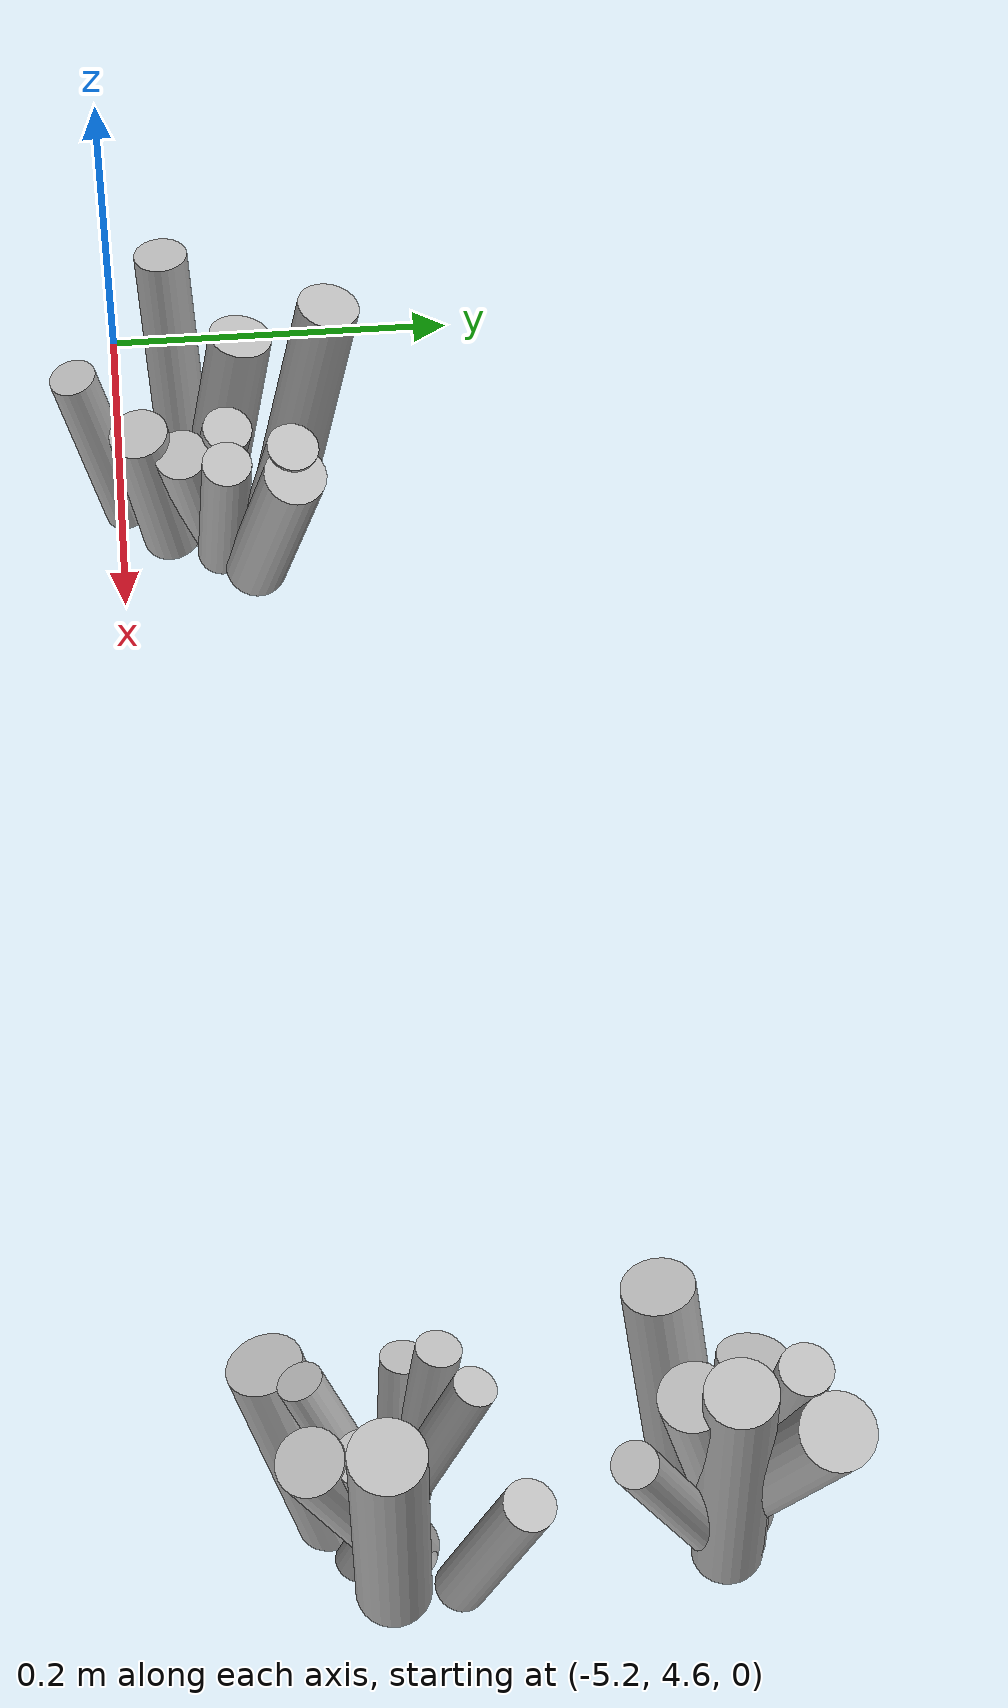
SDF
<sdf version="1.6">
 <world name="default">
  <model name="tussocks">
   <static>true</static>
   <link name="tuft69_0">
    <pose>-5.1239 4.6369 0.0465 0 0.2997 3.3750</pose>
    <visual name="tuft69_0_v">
     <geometry><cylinder><radius>0.0135</radius><length>0.1012</length></cylinder></geometry>
     <material>
      <script>
       <uri>model://bushfire/materials/scripts</uri>
       <uri>model://bushfire/materials/textures</uri>
       <name>Bushfire/Foliage2</name>
      </script>
     </material>
    </visual>
   </link>
   <link name="tuft69_1">
    <pose>-5.0542 4.6563 0.0493 0 0.2828 0.5223</pose>
    <visual name="tuft69_1_v">
     <geometry><cylinder><radius>0.0141</radius><length>0.1071</length></cylinder></geometry>
     <material>
      <script>
       <uri>model://bushfire/materials/scripts</uri>
       <uri>model://bushfire/materials/textures</uri>
       <name>Bushfire/Tussock</name>
      </script>
     </material>
    </visual>
   </link>
   <link name="tuft69_2">
    <pose>-5.1204 4.6355 0.0713 0 0.1743 3.4103</pose>
    <visual name="tuft69_2_v">
     <geometry><cylinder><radius>0.0152</radius><length>0.1549</length></cylinder></geometry>
     <material>
      <script>
       <uri>model://bushfire/materials/scripts</uri>
       <uri>model://bushfire/materials/textures</uri>
       <name>Bushfire/Foliage2</name>
      </script>
     </material>
    </visual>
   </link>
   <link name="tuft69_3">
    <pose>-5.0795 4.7090 0.0734 0 0.2038 1.8526</pose>
    <visual name="tuft69_3_v">
     <geometry><cylinder><radius>0.0177</radius><length>0.1596</length></cylinder></geometry>
     <material>
      <script>
       <uri>model://bushfire/materials/scripts</uri>
       <uri>model://bushfire/materials/textures</uri>
       <name>Bushfire/Foliage2</name>
      </script>
     </material>
    </visual>
   </link>
   <link name="tuft69_4">
    <pose>-5.0692 4.6618 0.0669 0 0.2027 2.1228</pose>
    <visual name="tuft69_4_v">
     <geometry><cylinder><radius>0.0178</radius><length>0.1455</length></cylinder></geometry>
     <material>
      <script>
       <uri>model://bushfire/materials/scripts</uri>
       <uri>model://bushfire/materials/textures</uri>
       <name>Bushfire/Foliage2</name>
      </script>
     </material>
    </visual>
   </link>
   <link name="tuft69_5">
    <pose>-5.0482 4.6212 0.0470 0 0.1720 5.1630</pose>
    <visual name="tuft69_5_v">
     <geometry><cylinder><radius>0.0169</radius><length>0.1022</length></cylinder></geometry>
     <material>
      <script>
       <uri>model://bushfire/materials/scripts</uri>
       <uri>model://bushfire/materials/textures</uri>
       <name>Bushfire/Foliage2</name>
      </script>
     </material>
    </visual>
   </link>
   <link name="tuft69_6">
    <pose>-5.0038 4.6877 0.0613 0 0.3409 0.5524</pose>
    <visual name="tuft69_6_v">
     <geometry><cylinder><radius>0.0178</radius><length>0.1333</length></cylinder></geometry>
     <material>
      <script>
       <uri>model://bushfire/materials/scripts</uri>
       <uri>model://bushfire/materials/textures</uri>
       <name>Bushfire/Tussock</name>
      </script>
     </material>
    </visual>
   </link>
   <link name="tuft69_7">
    <pose>-5.0255 4.6597 0.0496 0 0.2161 0.2189</pose>
    <visual name="tuft69_7_v">
     <geometry><cylinder><radius>0.0141</radius><length>0.1078</length></cylinder></geometry>
     <material>
      <script>
       <uri>model://bushfire/materials/scripts</uri>
       <uri>model://bushfire/materials/textures</uri>
       <name>Bushfire/Tussock</name>
      </script>
     </material>
    </visual>
   </link>
   <link name="tuft69_8">
    <pose>-5.0452 4.6430 0.0448 0 0.2983 5.8397</pose>
    <visual name="tuft69_8_v">
     <geometry><cylinder><radius>0.0154</radius><length>0.0975</length></cylinder></geometry>
     <material>
      <script>
       <uri>model://bushfire/materials/scripts</uri>
       <uri>model://bushfire/materials/textures</uri>
       <name>Bushfire/Foliage2</name>
      </script>
     </material>
    </visual>
   </link>
   <link name="tuft69_9">
    <pose>-5.0157 4.6874 0.0635 0 0.2810 0.6536</pose>
    <visual name="tuft69_9_v">
     <geometry><cylinder><radius>0.0147</radius><length>0.1381</length></cylinder></geometry>
     <material>
      <script>
       <uri>model://bushfire/materials/scripts</uri>
       <uri>model://bushfire/materials/textures</uri>
       <name>Bushfire/Tussock</name>
      </script>
     </material>
    </visual>
   </link>
   <link name="tuft69_10">
    <pose>-5.0747 4.5912 0.0539 0 0.2304 4.5166</pose>
    <visual name="tuft69_10_v">
     <geometry><cylinder><radius>0.0135</radius><length>0.1171</length></cylinder></geometry>
     <material>
      <script>
       <uri>model://bushfire/materials/scripts</uri>
       <uri>model://bushfire/materials/textures</uri>
       <name>Bushfire/Tussock</name>
      </script>
     </material>
    </visual>
   </link>
   <link name="tuft107_1">
    <pose>-4.4397 4.8527 0.0626 0 0.2342 3.6942</pose>
    <visual name="tuft107_1_v">
     <geometry><cylinder><radius>0.0187</radius><length>0.1361</length></cylinder></geometry>
     <material>
      <script>
       <uri>model://bushfire/materials/scripts</uri>
       <uri>model://bushfire/materials/textures</uri>
       <name>Bushfire/Foliage2</name>
      </script>
     </material>
    </visual>
   </link>
   <link name="tuft107_3">
    <pose>-4.3806 4.8913 0.0935 0 0.1757 0.6683</pose>
    <visual name="tuft107_3_v">
     <geometry><cylinder><radius>0.0134</radius><length>0.2032</length></cylinder></geometry>
     <material>
      <script>
       <uri>model://bushfire/materials/scripts</uri>
       <uri>model://bushfire/materials/textures</uri>
       <name>Bushfire/Tussock</name>
      </script>
     </material>
    </visual>
   </link>
   <link name="tuft107_4">
    <pose>-4.3709 4.8950 0.0908 0 0.3874 0.5483</pose>
    <visual name="tuft107_4_v">
     <geometry><cylinder><radius>0.0194</radius><length>0.1975</length></cylinder></geometry>
     <material>
      <script>
       <uri>model://bushfire/materials/scripts</uri>
       <uri>model://bushfire/materials/textures</uri>
       <name>Bushfire/Tussock</name>
      </script>
     </material>
    </visual>
   </link>
   <link name="tuft107_5">
    <pose>-4.3803 4.8673 0.0872 0 0.2543 5.4648</pose>
    <visual name="tuft107_5_v">
     <geometry><cylinder><radius>0.0177</radius><length>0.1895</length></cylinder></geometry>
     <material>
      <script>
       <uri>model://bushfire/materials/scripts</uri>
       <uri>model://bushfire/materials/textures</uri>
       <name>Bushfire/Foliage2</name>
      </script>
     </material>
    </visual>
   </link>
   <link name="tuft107_6">
    <pose>-4.3998 4.8829 0.0551 0 0.3809 2.9021</pose>
    <visual name="tuft107_6_v">
     <geometry><cylinder><radius>0.0180</radius><length>0.1198</length></cylinder></geometry>
     <material>
      <script>
       <uri>model://bushfire/materials/scripts</uri>
       <uri>model://bushfire/materials/textures</uri>
       <name>Bushfire/Foliage2</name>
      </script>
     </material>
    </visual>
   </link>
   <link name="tuft107_7">
    <pose>-4.3554 4.8445 0.0914 0 0.3872 5.5130</pose>
    <visual name="tuft107_7_v">
     <geometry><cylinder><radius>0.0116</radius><length>0.1987</length></cylinder></geometry>
     <material>
      <script>
       <uri>model://bushfire/materials/scripts</uri>
       <uri>model://bushfire/materials/textures</uri>
       <name>Bushfire/Tussock</name>
      </script>
     </material>
    </visual>
   </link>
   <link name="tuft107_8">
    <pose>-4.3667 4.8737 0.0935 0 0.1120 6.0059</pose>
    <visual name="tuft107_8_v">
     <geometry><cylinder><radius>0.0181</radius><length>0.2033</length></cylinder></geometry>
     <material>
      <script>
       <uri>model://bushfire/materials/scripts</uri>
       <uri>model://bushfire/materials/textures</uri>
       <name>Bushfire/Tussock</name>
      </script>
     </material>
    </visual>
   </link>
   <link name="tuft180_0">
    <pose>-4.3962 4.7216 0.0771 0 0.2220 2.4157</pose>
    <visual name="tuft180_0_v">
     <geometry><cylinder><radius>0.0114</radius><length>0.1676</length></cylinder></geometry>
     <material>
      <script>
       <uri>model://bushfire/materials/scripts</uri>
       <uri>model://bushfire/materials/textures</uri>
       <name>Bushfire/Foliage2</name>
      </script>
     </material>
    </visual>
   </link>
   <link name="tuft180_1">
    <pose>-4.3687 4.7027 0.0785 0 0.2118 5.7907</pose>
    <visual name="tuft180_1_v">
     <geometry><cylinder><radius>0.0144</radius><length>0.1706</length></cylinder></geometry>
     <material>
      <script>
       <uri>model://bushfire/materials/scripts</uri>
       <uri>model://bushfire/materials/textures</uri>
       <name>Bushfire/Foliage2</name>
      </script>
     </material>
    </visual>
   </link>
   <link name="tuft180_2">
    <pose>-4.3711 4.6926 0.0786 0 0.3481 5.3330</pose>
    <visual name="tuft180_2_v">
     <geometry><cylinder><radius>0.0173</radius><length>0.1708</length></cylinder></geometry>
     <material>
      <script>
       <uri>model://bushfire/materials/scripts</uri>
       <uri>model://bushfire/materials/textures</uri>
       <name>Bushfire/Foliage2</name>
      </script>
     </material>
    </visual>
   </link>
   <link name="tuft180_4">
    <pose>-4.3561 4.7573 0.0564 0 0.2970 1.0227</pose>
    <visual name="tuft180_4_v">
     <geometry><cylinder><radius>0.0135</radius><length>0.1227</length></cylinder></geometry>
     <material>
      <script>
       <uri>model://bushfire/materials/scripts</uri>
       <uri>model://bushfire/materials/textures</uri>
       <name>Bushfire/Foliage2</name>
      </script>
     </material>
    </visual>
   </link>
   <link name="tuft180_5">
    <pose>-4.3940 4.6937 0.0693 0 0.4167 4.2042</pose>
    <visual name="tuft180_5_v">
     <geometry><cylinder><radius>0.0118</radius><length>0.1506</length></cylinder></geometry>
     <material>
      <script>
       <uri>model://bushfire/materials/scripts</uri>
       <uri>model://bushfire/materials/textures</uri>
       <name>Bushfire/Foliage2</name>
      </script>
     </material>
    </visual>
   </link>
   <link name="tuft180_7">
    <pose>-4.4190 4.6666 0.0573 0 0.3311 4.0487</pose>
    <visual name="tuft180_7_v">
     <geometry><cylinder><radius>0.0195</radius><length>0.1246</length></cylinder></geometry>
     <material>
      <script>
       <uri>model://bushfire/materials/scripts</uri>
       <uri>model://bushfire/materials/textures</uri>
       <name>Bushfire/Tussock</name>
      </script>
     </material>
    </visual>
   </link>
   <link name="tuft180_9">
    <pose>-4.3854 4.7203 0.0782 0 0.3551 1.6913</pose>
    <visual name="tuft180_9_v">
     <geometry><cylinder><radius>0.0112</radius><length>0.1701</length></cylinder></geometry>
     <material>
      <script>
       <uri>model://bushfire/materials/scripts</uri>
       <uri>model://bushfire/materials/textures</uri>
       <name>Bushfire/Foliage2</name>
      </script>
     </material>
    </visual>
   </link>
   <link name="tuft180_10">
    <pose>-4.3528 4.7065 0.0915 0 0.1524 6.1397</pose>
    <visual name="tuft180_10_v">
     <geometry><cylinder><radius>0.0192</radius><length>0.1989</length></cylinder></geometry>
     <material>
      <script>
       <uri>model://bushfire/materials/scripts</uri>
       <uri>model://bushfire/materials/textures</uri>
       <name>Bushfire/Tussock</name>
      </script>
     </material>
    </visual>
   </link>
   <link name="tuft180_11">
    <pose>-4.3994 4.7139 0.0664 0 0.2939 2.9543</pose>
    <visual name="tuft180_11_v">
     <geometry><cylinder><radius>0.0117</radius><length>0.1443</length></cylinder></geometry>
     <material>
      <script>
       <uri>model://bushfire/materials/scripts</uri>
       <uri>model://bushfire/materials/textures</uri>
       <name>Bushfire/Tussock</name>
      </script>
     </material>
    </visual>
   </link>
  </model>
 </world>
</sdf>
